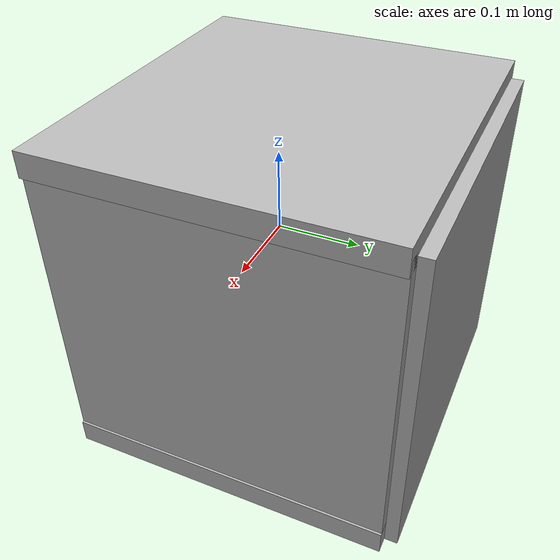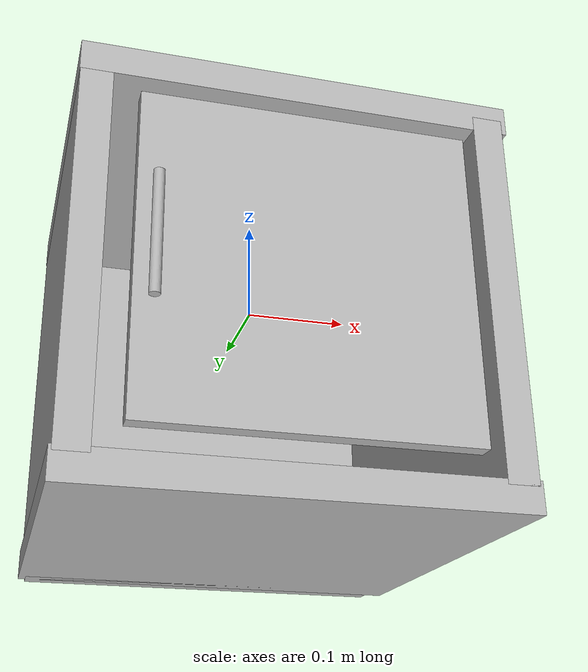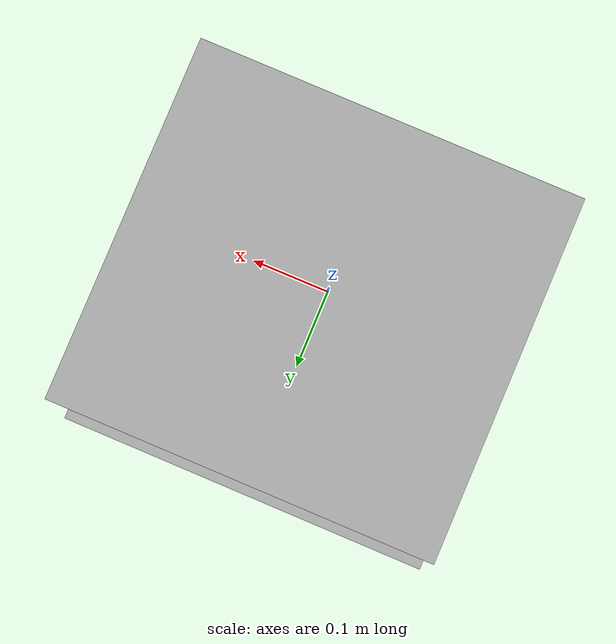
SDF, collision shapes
<?xml version="1.0"?>
<sdf version="1.5">
  <model name="Kallax2">
    <link name="Kallaxbase">
      <inertial>
        <mass>100</mass>
      </inertial>

      <collision name="KallaxBaseTop">
	  <pose>0.007 0.02 0.155 0 0 0 </pose>
        <geometry>
            <box>
                <size>0.415 0.39 0.03</size>
            </box>
        </geometry>
      </collision>
      <collision name="KallaxBaseLeft">
	  <pose>-0.185 0.02 -0.03 0 0 0 </pose>
        <geometry>
            <box>
                <size>0.03 0.39 0.37</size>
            </box>
        </geometry>
      </collision>
      <collision name="KallaxBaseBottom">
	  <pose>0.005 0.02 -0.225 0 0 0 </pose>
        <geometry>
            <box>
                <size>0.415 0.39 0.03</size>
            </box>
        </geometry>
      </collision>

      <collision name="KallaxBaseRight">
	  <pose>0.1950 0.02 -0.03 0 0 0 </pose>
        <geometry>
            <box>
                <size>0.03 0.39 0.37</size>
            </box>
        </geometry>
      </collision>
      <collision name="KallaxBaseBack">
	  <pose>0 0.215 -0.045 0 0 0 </pose>
        <geometry>
            <box>
                <size>0.39 0.03 0.39</size>
            </box>
        </geometry>
      </collision>

      <visual name="Basevisual">
        <pose>0 0 0 0 -0.01 0 </pose>
        <geometry>
          <mesh>
            <scale>1 1 1</scale>
            <uri>model://Kallax2/meshes/Kallax.dae</uri>
          </mesh>
        </geometry>
      </visual>
    </link>

    <link name="Door">
      <pose>0.02 -0.17 -0.017 0 0 -1.57478</pose>
      <inertial>
        <mass>0.8</mass>
      </inertial>
      <collision name="DoorBase">
	  <pose>0 -0.01 -0.015 0 0 0 </pose>
        <geometry>
            <box>
                <size>0.016 0.31 0.31</size>
            </box>
        </geometry>
      </collision>

      <collision name="DoorHandle">
	  <pose>0.035 -0.15 -0.015 0 0 0</pose>
        <geometry>
	    <cylinder>
            	<radius>0.005</radius>
            	<length>0.115</length>
            </cylinder>
        </geometry>
      </collision>
      <visual name="Doorvisual">
        <geometry>
          <mesh>
            <scale>1 1 1</scale>
            <uri>model://Kallax2/meshes/Kallax_Tuer.dae</uri>
          </mesh>
        </geometry>
      </visual>
    </link>

    <joint name='/DoorJoint' type='revolute'>
      <child>Door</child>
      <parent>Kallaxbase</parent>
      <pose>0 0.165 0 0 0 0</pose>
      <axis>
        <xyz>0 0 1</xyz>
        <limit>
          <lower>0</lower>
          <upper>150</upper>
          <effort>10</effort>
          <velocity>1000</velocity>
        </limit>
        <dynamics>
          <damping>10</damping>
        </dynamics>
      </axis>
      <physics>
        <ode>
          <limit>
            <cfm>0</cfm>
            <erp>0.2</erp>
          </limit>
        </ode>
      </physics>
    </joint>

    <joint name='fixe_to_world' type='fixed'>
        <child>Kallaxbase</child>
        <parent>world</parent>
        <axis>
          <xyz>0 0 1</xyz>
          <limit>
            <lower>-1e+16</lower>
            <upper>1e+16</upper>
          </limit>
        </axis>
      </joint>

  </model>
</sdf>
